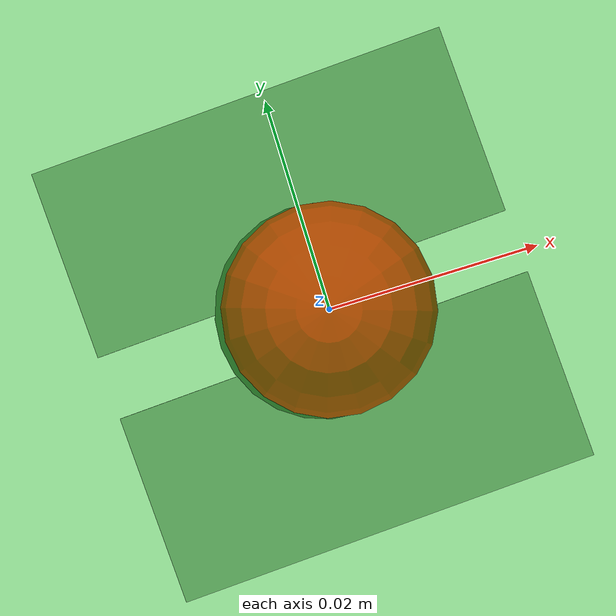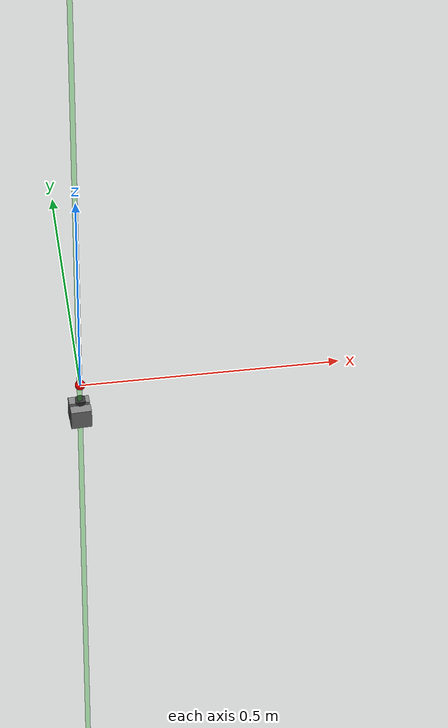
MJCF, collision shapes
<?xml version='1.0' encoding='utf-8'?>
<mujoco model="soarm_gripper">
    <asset>
        <mesh name="soarm_clamp_left" file="soarm_parallel/clamp_1_visual.stl" scale="0.001 0.001 0.001" />
        <mesh name="soarm_clamp_right" file="soarm_parallel/clamp_2_visual.stl" scale="0.001 0.001 0.001" />
        <mesh name="soarm_main_frame" file="soarm_parallel/main_frame_visual.stl" scale="0.001 0.001 0.001" />
        <material name="soarm_frame_material" rgba="0.1 0.1 0.1 1" />
        <material name="soarm_jaw_material" rgba="1 0.82 0.12 1" />
        <material name="soarm_gear_material" rgba="0.2 0.2 0.2 1" />
    </asset>
    <equality>
        <joint joint1="gripper_right" joint2="gripper_left" polycoef="0 1 0 0 0" />
    </equality>
    <actuator>
        <position ctrllimited="true" ctrlrange="0 0.036" joint="gripper_left" kp="1000" name="gripper_left" forcelimited="true" forcerange="-60 60" />
        <position ctrllimited="true" ctrlrange="0 0.036" joint="gripper_right" kp="1000" name="gripper_right" forcelimited="true" forcerange="-60 60" />
    </actuator>
    <worldbody>
        <body name="right_gripper" pos="0 0 0" quat="1 0 0 0">
            <site name="ft_frame" pos="0 0 0" size="0.01 0.01 0.01" rgba="1 0 0 1" type="sphere" group="1" />
            <inertial pos="0.0044 0.0003 -0.03" mass="0.07" diaginertia="6e-05 6e-05 4e-05" />
            <body name="eef" pos="-0.00161080382177 -0.000000415863769 -0.0766687457065" quat="1 0 0 0">
                <site name="grip_site" pos="0 0 0" size="0.01 0.01 0.01" rgba="1 0 0 0.5" type="sphere" group="1" />
                <site name="ee" pos="0 0 0" size="0.01 0.01 0.01" rgba="0 0 1 0" type="sphere" group="1" />
                <site name="ee_x" pos="0.1 0 0" size="0.005 .1" quat="0.707105 0 0.707108 0" rgba="1 0 0 0" type="cylinder" group="1" />
                <site name="ee_y" pos="0 0.1 0" size="0.005 .1" quat="0.707105 0.707108 0 0" rgba="0 1 0 0" type="cylinder" group="1" />
                <site name="ee_z" pos="0 0 0.1" size="0.005 .1" quat="1 0 0 0" rgba="0 0 1 0" type="cylinder" group="1" />
                <site name="grip_site_cylinder" pos="0 0 0" size="0.005 10" rgba="0 1 0 0.3" type="cylinder" group="1" />
            </body>
            <body name="parallel_gripper_mechanism" pos="0.004443322423 0.000294707935691 0.000326451918819" quat="0.70661586601 -0.0172159141252 0.707178743779 0.0172004229618">
                <geom type="mesh" mesh="soarm_main_frame" material="soarm_frame_material" contype="0" conaffinity="0" group="1" pos="0.03699999989 -0.06400000006 -0.02975000013" quat="0.5000044338 0.4999974033 0.4999955662 0.5000025967" name="main_frame_visual" />
                <!-- Source Gear is a cylinder; equality supplies the rack coupling. -->
                <geom type="cylinder" name="pinion_visual" pos="0.045 0 -0.005" quat="0.707106781187 0 -0.707106781187 0" size="0.01 0.005" material="soarm_gear_material" contype="0" conaffinity="0" group="1" />
                <body name="gripper_left_jaw" pos="0 0 0" quat="1 0 0 0">
                    <joint name="gripper_left" type="slide" axis="0 -1 0" limited="true" range="0 0.036" damping="50" armature="1.0" frictionloss="0.5" />
                    <inertial pos="0.077 -0.012 -0.006" mass="0.05" diaginertia="4e-05 4e-05 1e-05" />
                    <geom type="mesh" mesh="soarm_clamp_left" material="soarm_jaw_material" contype="0" conaffinity="0" group="1" pos="-0.12741 0.006879999936 0.14606" quat="0.0000009381547174 0.7071080799 -0.7071054825 -0.0000009383453958" name="left_jaw_visual" />
                    <geom type="box" size="0.022 0.009 0.020" pos="0.077 -0.012 -0.006" group="0" contype="1" conaffinity="1" condim="4" solref="0.01 1" friction="2 0.05 0.0001" name="left_jaw_collision" />
                </body>
                <body name="gripper_right_jaw" pos="0 0 0" quat="1 0 0 0">
                    <joint name="gripper_right" type="slide" axis="0 1 0" limited="true" range="0 0.036" damping="50" armature="1.0" frictionloss="0.5" />
                    <inertial pos="0.077 0.012 -0.006" mass="0.05" diaginertia="4e-05 4e-05 1e-05" />
                    <geom type="mesh" mesh="soarm_clamp_right" material="soarm_jaw_material" contype="0" conaffinity="0" group="1" pos="-0.12742 0.008099999943 0.14571" quat="0.0000009385312933 0.7071080802 -0.7071054822 -0.0000009378514401" name="right_jaw_visual" />
                    <geom type="box" size="0.022 0.009 0.020" pos="0.077 0.012 -0.006" group="0" contype="1" conaffinity="1" condim="4" solref="0.01 1" friction="2 0.05 0.0001" name="right_jaw_collision" />
                </body>
            </body>
        </body>
    </worldbody>
    <sensor>
        <force name="force_ee" site="ft_frame" />
        <torque name="torque_ee" site="ft_frame" />
    </sensor>
</mujoco>
